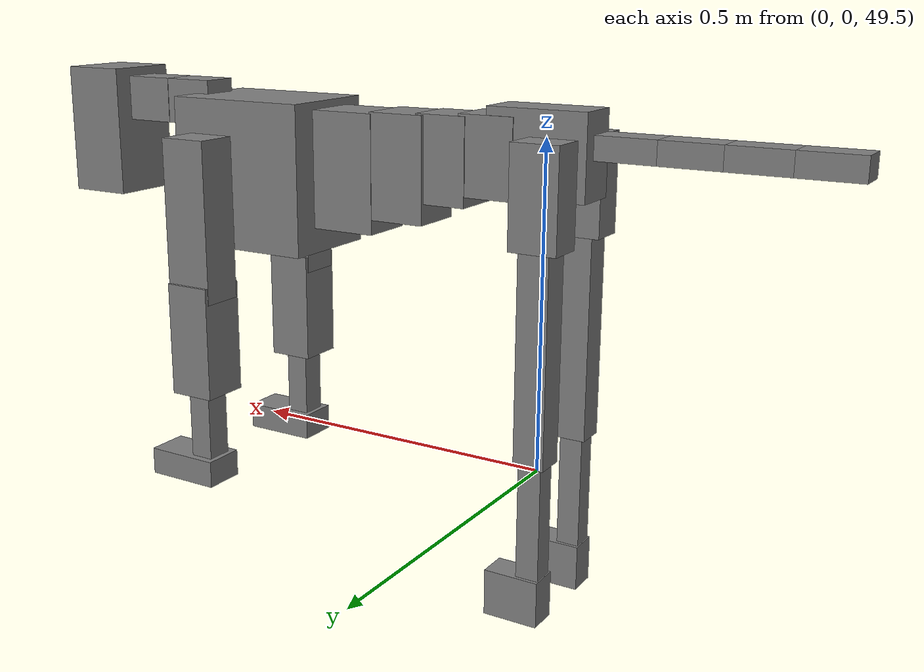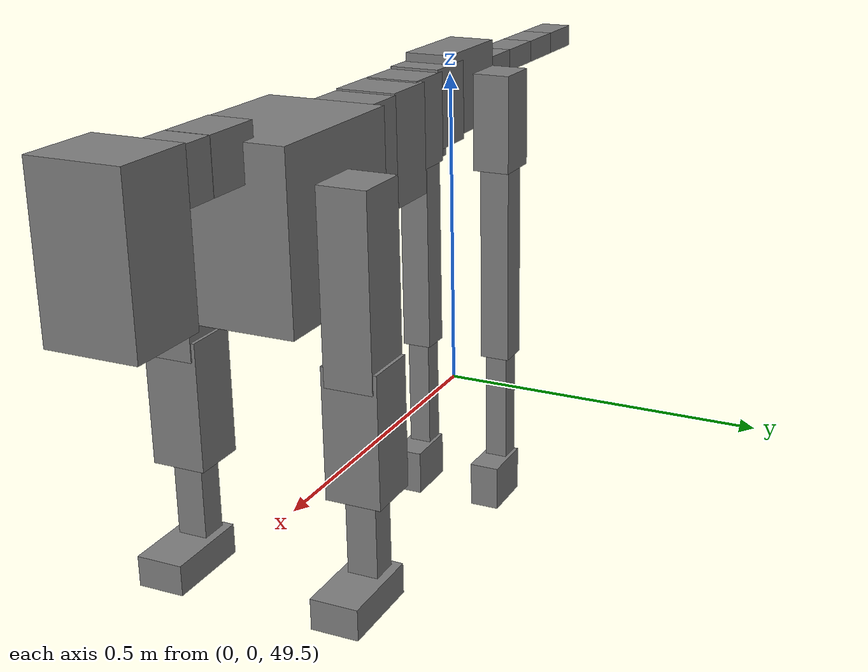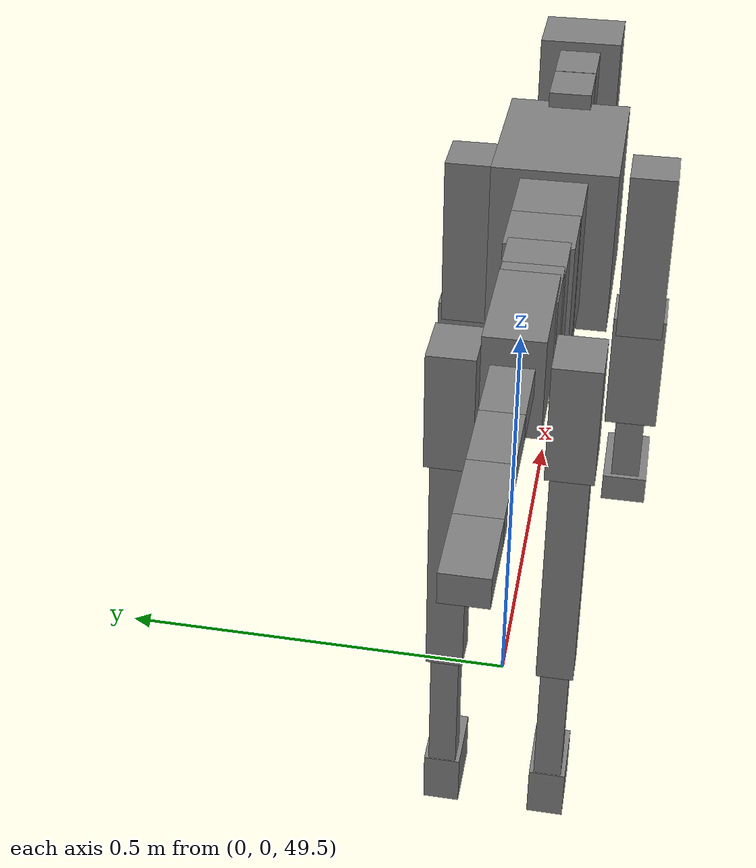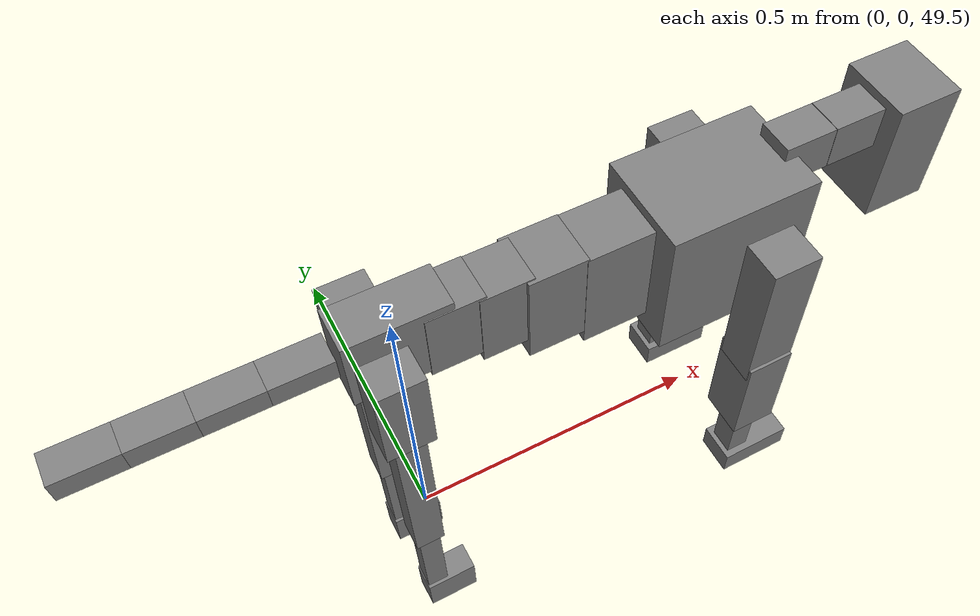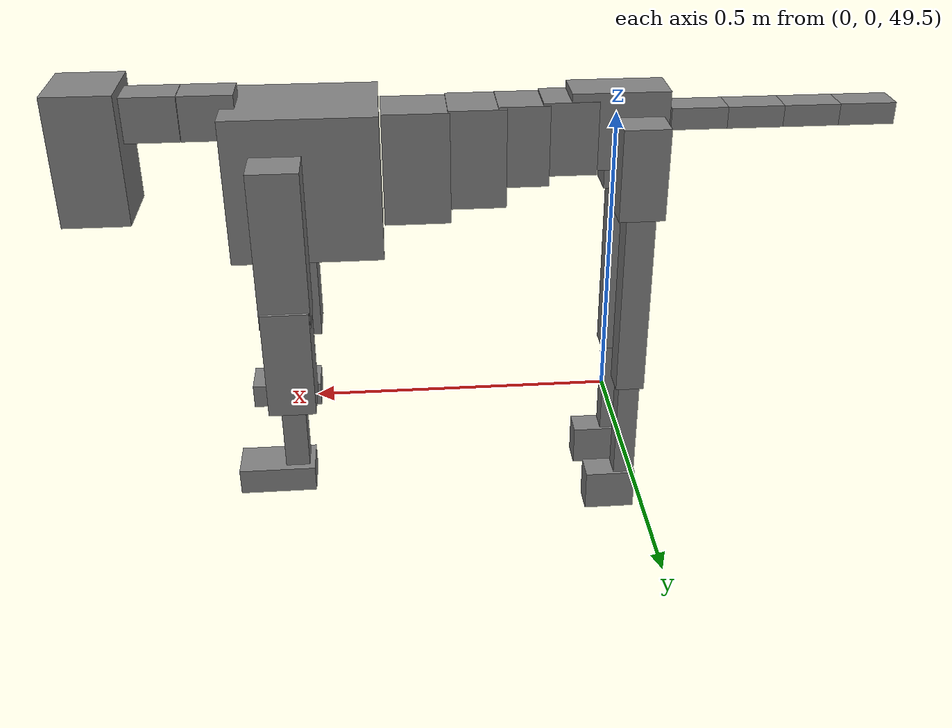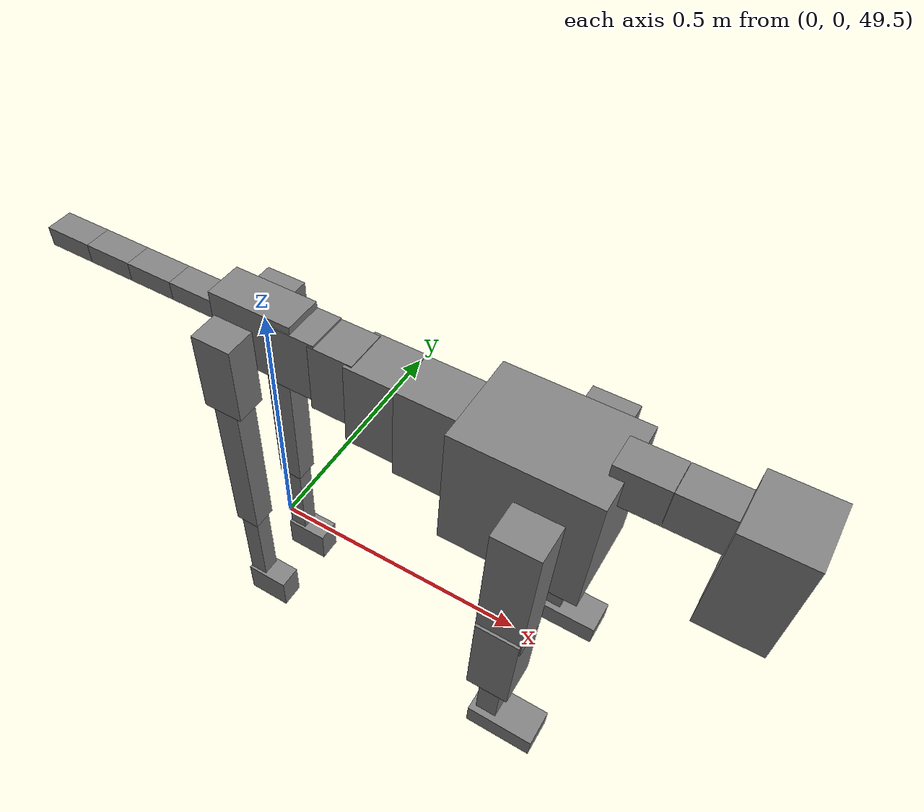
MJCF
<mujoco model="dog">

    <default>
        <joint armature="0.02" stiffness="1" damping="0.2" limited="true"/>
        <geom condim="3" friction="1 0.05 0.05" margin="0.01"/>
        <motor ctrllimited="true" ctrlrange="-1.0 1.0" forcelimited="true" gear="50"/>
    </default>

    <compiler inertiafromgeom="true" angle="radian"/>

    <option timestep="0.016" iterations="50" tolerance="1e-10" solver="Newton" jacobian="dense" cone="pyramidal"/>

    <size nconmax="20000" njmax="60000" nstack="5000000"/>
    <visual>
        <map force="0.1" zfar="30"/>
        <rgba haze="0.15 0.25 0.35 1"/>
        <quality shadowsize="2048"/>
        <global offwidth="800" offheight="800"/>
    </visual>

    <asset>
        <texture type="skybox" builtin="gradient" rgb1="0.3 0.5 0.7" rgb2="0 0 0" width="512" height="512"/>
        <texture name="texplane" type="2d" builtin="checker" rgb1=".2 .3 .4" rgb2=".1 0.15 0.2" width="512" height="512"
                 mark="cross" markrgb=".8 .8 .8"/>
        <texture name="texgeom" type="cube" builtin="flat" mark="cross" width="127" height="1278" rgb1="0.8 0.6 0.4"
                 rgb2="0.8 0.6 0.4" markrgb="1 1 1" random="0.01"/>

        <material name="matplane" reflectance="0.3" texture="texplane" texrepeat="1 1" texuniform="true"/>
        <material name="matgeom" texture="texgeom" texuniform="true" rgba="0.8 0.6 .4 1"/>
    </asset>

    <worldbody>
        <geom name="floor" pos="0 0 0" size="0 0 .25" type="plane" material="matplane" condim="3"/>

        <light directional="false" diffuse=".2 .2 .2" specular="0 0 0" pos="0 0 5" dir="0 0 -1" castshadow="false"/>
        <light mode="targetbodycom" target="torso" directional="false" diffuse=".8 .8 .8" specular="0.3 0.3 0.3"
               pos="0 0 4.0" dir="0 0 -1"/>

        <body name="root" pos="0 0 50">
            <freejoint name="root_1"/>
            <geom type="box" pos="0 0 -0.02" size="0.0774  0.0358  0.063" density="2030"/>

            <body name="spine1" pos="0.054 0 0">
                <joint name="spine1_y" axis="0 1 0" range="0 0.7" limited="true"/>
                <geom type="box" pos="0.02375 0 -0.03" size="0.04375  0.0375  0.05985" density="2030"/>

                <body name="spine2" pos="0.0612 0 0">
                    <joint name="spine2_y" axis="0 1 0" range="-0.15 0.15" limited="true"/>
                    <geom type="box" pos="0.03555  0  -0.04" size="0.04055  0.039  0.06615" density="2030"/>

                    <body name="spine3" pos="0.0730 0 0">
                        <joint name="spine3_y" axis="0 1 0" range="-0.15 0.15" limited="true"/>
                        <geom type="box" pos="0.03555  0  -0.057" size="0.04555  0.0445  0.081" density="2030"/>

                        <body name="spine4" pos="0.0780 0 0">
                            <joint name="spine4_y" axis="0 1 0" range="-0.15 0.15" limited="true"/>
                            <geom type="box" pos="0.05265  0  -0.07" size="0.05265  0.045  0.09135" density="2030"/>

                            <body name="torso" pos="0.1082 0 0">
                                <joint name="torso_y" axis="0 1 0" range="-0.15 0.15" limited="true"/>
                                <geom type="box" pos="0.11925  0  -0.085" size="0.11925  0.085  0.11745"
                                      density="2030"/>

                                <body name="neck1" pos="0.2160  0   0.0180">
                                    <joint name="neck1_y" axis="0 1 0" range="-1.2  -1" limited="true"/>
                                    <geom type="box" pos="0.0423  0  0" size="0.0423  0.03  0.036" density="2325"/>

                                    <body name="neck2" pos="0.0853  0  0">
                                        <joint name="neck2_y" axis="0 1 0" range="0.1  0" limited="true"/>
                                        <geom type="box" pos="0.0423  0  0" size="0.0423  0.03  0.036" density="2325"/>

                                        <body name="head" pos="0.0853  0  0">
                                            <joint name="head_y" axis="0 1 0" range="-0.3  -0.2" limited="true"/>
                                            <geom type="box" pos="0.0531  0  -0.055" size="0.0531  0.06  0.1044"
                                                  density="4030"/>

                                        </body>
                                    </body>
                                </body>

                                <body name="front_shoulder" pos="0.156  0   -0.0480">
                                    <joint name="front_shoulder_y" axis="0 1 0" range="-1 1.5" limited="true"/>
                                    <geom type="box" pos="0 0.13 -0.1010" size="0.0393  0.0336  0.1276" density="1158"/>
                                    <geom type="box" pos="0 -0.13 -0.1010" size="0.0393  0.0336  0.1276"
                                          density="1158"/>

                                    <body name="front_elbow" pos="0  0  -0.2019">
                                        <joint name="front_elbow_y" axis="0 1 0" range="-2 0" limited="true"/>
                                        <geom type="box" pos="0 0.13 -0.0903" size="0.0376  0.0385  0.0903"
                                              density="1081"/>
                                        <geom type="box" pos="0 -0.13 -0.0903" size="0.0376  0.0385  0.0903"
                                              density="1081"/>

                                        <body name="front_wrist" pos="0  0  -0.1805">
                                            <joint name="front_wrist_y" axis="0 1 0" range="-0.2 0" limited="true"/>
                                            <geom type="box" pos="0 0.13 -0.0620" size="0.0192  0.0213  0.0751"
                                                  density="1664"/>
                                            <geom type="box" pos="0 -0.13 -0.0620" size="0.0192  0.0213  0.0751"
                                                  density="1664"/>

                                            <body name="front_finger_end" pos="0  0  -0.1239">
                                                <joint name="front_finger_y" axis="0 1 0" range="-0.4 1"
                                                       limited="true"/>
                                                <geom type="box" pos="0.0334  0.13  -0.0066"
                                                      size="0.0613  0.0334  0.0216" density="1515"/>
                                                <geom type="box" pos="0.0334  -0.13  -0.0066"
                                                      size="0.0613  0.0334  0.0216" density="1515"/>

                                            </body>

                                        </body>
                                    </body>
                                </body>

                            </body>
                        </body>
                    </body>
                </body>
            </body>

            <body name="back_hip" pos="-0.03 0 -0.018">
                <joint name="back_hip_y" axis="0 1 0" range="-1.5 0.3" limited="true"/>
                <geom type="box" pos="0 0.07 -0.0527" size="0.0369  0.0289  0.0755" density="1154"/>
                <geom type="box" pos="0 -0.07 -0.0527" size="0.0369  0.0289  0.0755" density="1154"/>

                <body name="back_knee" pos="0  0  -0.1053">
                    <joint name="back_knee_y" axis="0 1 0" range="0 2.8" limited="true"/>
                    <geom type="box" pos="0 0.07 -0.1600" size="0.0237  0.0234  0.1756" density="1227"/>
                    <geom type="box" pos="0 -0.07 -0.1600" size="0.0237  0.0234  0.1756" density="1227"/>

                    <body name="back_ankle" pos="0  0  -0.3201">
                        <joint name="back_ankle_y" axis="0 1 0" range="-2.2 0" limited="true"/>
                        <geom type="box" pos="0 0.07 -0.1026" size="0.0178  0.0178  0.1139" density="1284"/>
                        <geom type="box" pos="0 -0.07 -0.1026" size="0.0178  0.0178  0.1139" density="1284"/>

                        <body name="back_toe_end" pos="0  0  -0.2053">
                            <joint name="back_toe_y" axis="0 1 0" range="-0.4 1" limited="true"/>
                            <geom type="box" pos="0.0234  0.07  -0.0206" size="0.0429  0.0234  0.0356" density="1515"/>
                            <geom type="box" pos="0.0234  -0.07  -0.0206" size="0.0429  0.0234  0.0356" density="1515"/>

                        </body>
                    </body>
                </body>
            </body>

            <body name="tail1" pos="-0.074 0 -0.006">
                <joint name="tail1_y" axis="0 1 0" range="-0.2 0.2" limited="true"/>
                <geom type="box" pos="-0.0536  0  0" size="0.045  0.025  0.0175" density="1587"/>

                <body name="tail2" pos="-0.09 0 0">
                    <joint name="tail2_y" axis="0 1 0" range="-0.2 0.2" limited="true"/>
                    <geom type="box" pos="-0.0536  0  0" size="0.045  0.025  0.0175" density="1587"/>

                    <body name="tail3" pos="-0.09 0 0">
                        <joint name="tail3_y" axis="0 1 0" range="-0.2 0.2" limited="true"/>
                        <geom type="box" pos="-0.0536  0  0" size="0.045  0.025  0.0175" density="1587"/>

                        <body name="tail4" pos="-0.09 0 0">
                            <joint name="tail4_y" axis="0 1 0" range="-0.2 0.2" limited="true"/>
                            <geom type="box" pos="-0.0536  0  0" size="0.045  0.025  0.0175" density="1587"/>

                        </body>
                    </body>
                </body>
            </body>
        </body>
    </worldbody>

    <actuator>
        <motor joint="spine1_y" forcerange="-150 150     "/>
        <motor joint="spine2_y" forcerange="-150 150     "/>
        <motor joint="spine3_y" forcerange="-150 150     "/>
        <motor joint="spine4_y" forcerange="-150 150     "/>
        <motor joint="torso_y" forcerange="-150 150     "/>
        <motor joint="neck1_y" forcerange="-100 100       "/>
        <motor joint="neck2_y" forcerange="-100 100       "/>
        <motor joint="head_y" forcerange="-150 150       "/>
        <motor joint="front_shoulder_y" forcerange="-150.80 173.39"/>
        <motor joint="front_elbow_y" forcerange="-198.09 181.58"/>
        <motor joint="front_wrist_y" forcerange="-80.45 90.35"/>
        <motor joint="front_finger_y" forcerange="-63.45 74.88"/>
        <motor joint="back_hip_y" forcerange="-255.06 330.76"/>
        <motor joint="back_knee_y" forcerange="-245.71 293.95"/>
        <motor joint="back_angle_y" forcerange="-52.14 133.00"/>
        <motor joint="back_toe_y" forcerange="-56.03 51.13"/>
        <motor joint="tail1_y" forcerange="-50 50     "/>
        <motor joint="tail2_y" forcerange="-50 50     "/>
        <motor joint="tail3_y" forcerange="-50 50     "/>
        <motor joint="tail4_y" forcerange="-50 50     "/>
    </actuator>
</mujoco>
